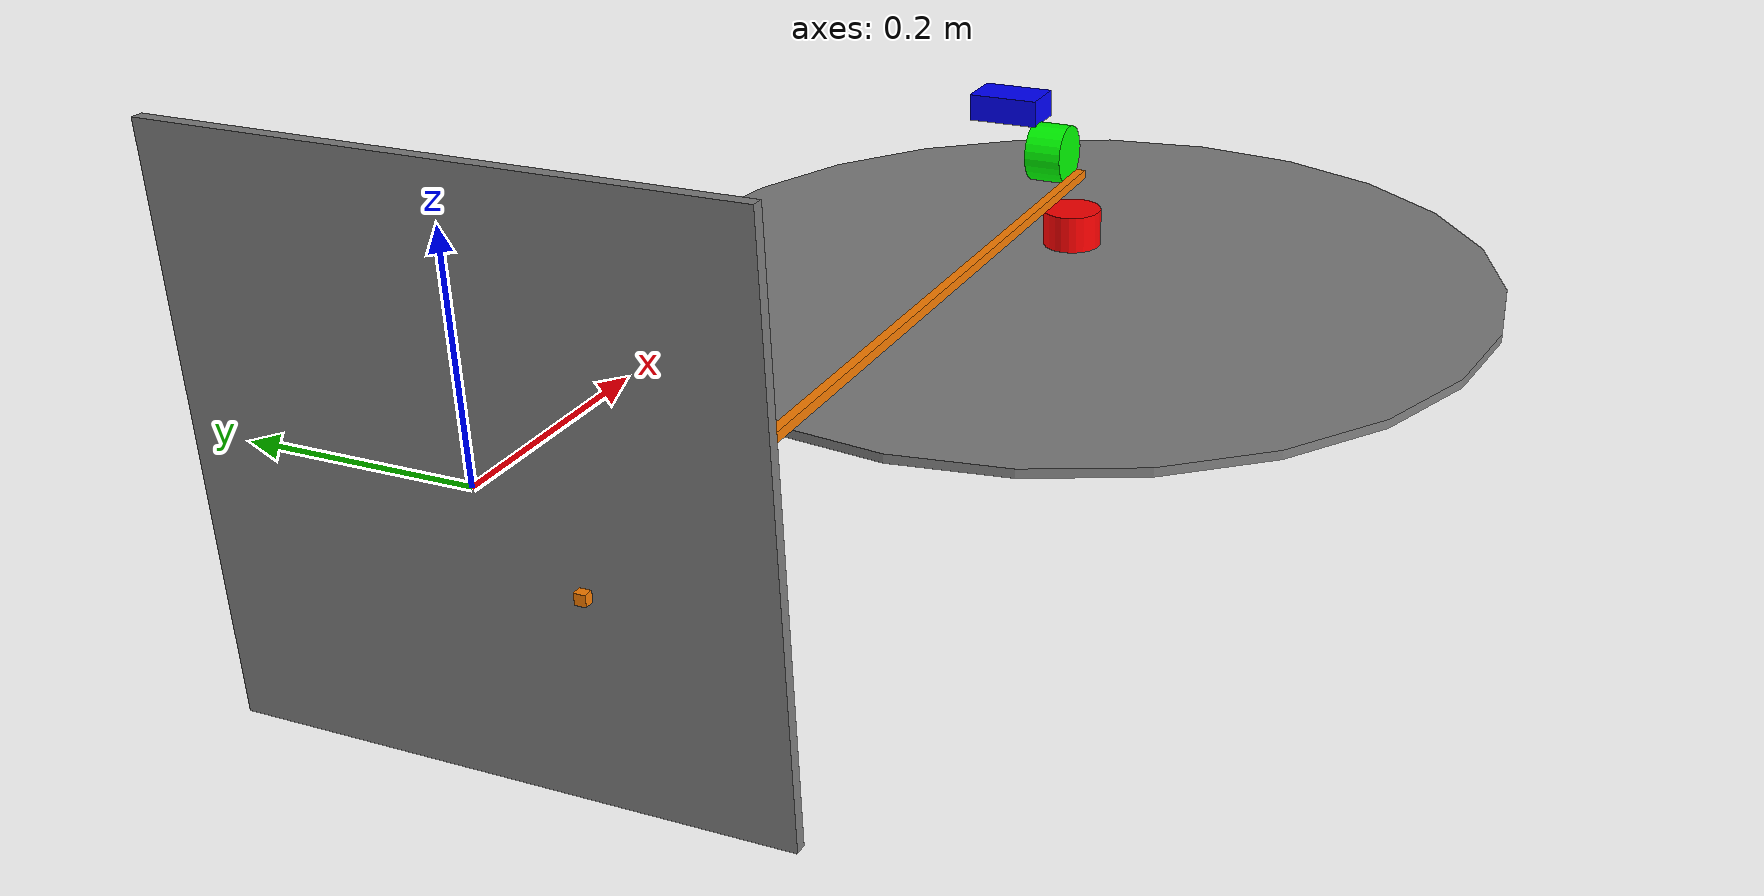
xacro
<?xml version="1.0"?>
<robot xmlns:xacro="http://www.ros.org/wiki/xacro" name="gimbal">

  <!-- ====== 偏移关系参数 - 请根据实际标定结果修改 ====== -->

  <!-- screen_frame到camera_link的静态变换 (从标定得到) -->
  <xacro:property name="screen_to_camera_x" value="1.0"/>
  <xacro:property name="screen_to_camera_y" value="0.0"/>
  <xacro:property name="screen_to_camera_z" value="0.0"/>
  <xacro:property name="screen_to_camera_roll" value="0.0"/>
  <xacro:property name="screen_to_camera_pitch" value="0.0"/>
  <xacro:property name="screen_to_camera_yaw" value="3.1415"/>

  <!-- camera_link到gimbal_base_link的静态变换 (相机→云台底座外参) -->
  <xacro:property name="camera_to_gimbal_base_x" value="0.012564"/>
  <xacro:property name="camera_to_gimbal_base_y" value="0.080182"/>
  <xacro:property name="camera_to_gimbal_base_z" value="-0.2"/>
  <xacro:property name="camera_to_gimbal_base_roll" value="0.0"/>
  <xacro:property name="camera_to_gimbal_base_pitch" value="0.0"/>
  <xacro:property name="camera_to_gimbal_base_yaw" value="0.0"/>

  <!-- pan_joint的安装位置 -->
  <xacro:property name="gimbal_base_to_pan_x" value="0.0"/>
  <xacro:property name="gimbal_base_to_pan_y" value="0.0"/>
  <xacro:property name="gimbal_base_to_pan_z" value="0.04685"/>

  <!-- tilt_joint的安装位置 -->
  <xacro:property name="pan_to_tilt_x" value="0.00058"/>
  <xacro:property name="pan_to_tilt_y" value="-0.024078"/>
  <xacro:property name="pan_to_tilt_z" value="0.085922"/>

  <!-- laser_link的光心小偏移 -->
  <xacro:property name="tilt_to_laser_x" value="0.0"/>
  <xacro:property name="tilt_to_laser_y" value="0.034982"/>
  <xacro:property name="tilt_to_laser_z" value="0.000"/>
  <xacro:property name="tilt_to_laser_roll" value="0.0"/>
  <xacro:property name="tilt_to_laser_pitch" value="0.0"/>
  <xacro:property name="tilt_to_laser_yaw" value="0.0"/>

  <!-- 关节限制 -->
  <xacro:property name="pan_joint_lower_limit" value="-1.57079"/>
  <xacro:property name="pan_joint_upper_limit" value="1.57079"/>
  <xacro:property name="tilt_joint_lower_limit" value="-1.57079"/>
  <xacro:property name="tilt_joint_upper_limit" value="1.57079"/>

  <!-- 几何参数 -->
  <xacro:property name="PI" value="3.14159265359"/>
  <xacro:property name="gimbal_base_height" value="0.01"/>
  <xacro:property name="gimbal_base_radius" value="0.50"/>
  <xacro:property name="pan_height" value="0.04185"/>
  <xacro:property name="pan_radius" value="0.03335"/>
  <xacro:property name="tilt_height" value="0.04185"/>
  <xacro:property name="tilt_radius" value="0.03335"/>

  <!-- ====== 材料定义 ====== -->
  <material name="blue">
    <color rgba="0.0 0.0 1.0 1.0"/>
  </material>

  <material name="red">
    <color rgba="1.0 0.0 0.0 1.0"/>
  </material>

  <material name="green">
    <color rgba="0.0 1.0 0.0 1.0"/>
  </material>

  <material name="grey">
    <color rgba="0.5 0.5 0.5 1.0"/>
  </material>

  <material name="orange">
    <color rgba="1.0 0.5 0.0 1.0"/>
  </material>

  <!-- ====== 链接定义 ====== -->

  <!-- screen_frame - 屏幕坐标系（根链接） -->
  <link name="screen_frame">
    <visual>
      <origin xyz="0 0 0" rpy="0 0 0"/>
      <geometry>
        <box size="0.01 0.5 0.5"/>
      </geometry>
      <material name="grey"/>
    </visual>
  </link>

  <!-- camera_link - 相机链接 -->
  <link name="camera_link">
    <visual>
      <origin xyz="0 0 0" rpy="0 0 0"/>
      <geometry>
        <box size="0.05 0.08 0.03"/>
      </geometry>
      <material name="blue"/>
    </visual>
    <collision>
      <origin xyz="0 0 0" rpy="0 0 0"/>
      <geometry>
        <box size="0.05 0.08 0.03"/>
      </geometry>
    </collision>
    <inertial>
      <origin xyz="0 0 0" rpy="0 0 0"/>
      <mass value="0.1"/>
      <inertia ixx="0.001" ixy="0.0" ixz="0.0" iyy="0.001" iyz="0.0" izz="0.001"/>
    </inertial>
  </link>

  <!-- gimbal_base_link - 云台底座链接 -->
  <link name="gimbal_base_link">
    <visual>
      <origin xyz="0 0 ${gimbal_base_height/2}" rpy="0 0 0"/>
      <geometry>
        <cylinder length="${gimbal_base_height}" radius="${gimbal_base_radius}"/>
      </geometry>
      <material name="grey"/>
    </visual>
    <collision>
      <origin xyz="0 0 ${gimbal_base_height/2}" rpy="0 0 0"/>
      <geometry>
        <cylinder length="${gimbal_base_height}" radius="${gimbal_base_radius}"/>
      </geometry>
    </collision>
    <inertial>
      <origin xyz="0 0 ${gimbal_base_height/2}" rpy="0 0 0"/>
      <mass value="0.5"/>
      <inertia ixx="0.005" ixy="0.0" ixz="0.0" iyy="0.005" iyz="0.0" izz="0.005"/>
    </inertial>
  </link>

  <!-- gimbal_pan_link - 云台水平旋转链接 -->
  <link name="gimbal_pan_link">
    <visual>
      <origin xyz="0 0 ${pan_height/2}" rpy="0 0 0"/>
      <geometry>
        <cylinder length="${pan_height}" radius="${pan_radius}"/>
      </geometry>
      <material name="red"/>
    </visual>
    <collision>
      <origin xyz="0 0 ${pan_height/2}" rpy="0 0 0"/>
      <geometry>
        <cylinder length="${pan_height}" radius="${pan_radius}"/>
      </geometry>
    </collision>
    <inertial>
      <origin xyz="0 0 ${pan_height/2}" rpy="0 0 0"/>
      <mass value="0.3"/>
      <inertia ixx="0.003" ixy="0.0" ixz="0.0" iyy="0.003" iyz="0.0" izz="0.003"/>
    </inertial>
  </link>

  <!-- gimbal_tilt_link - 云台俯仰旋转链接 -->
  <link name="gimbal_tilt_link">
    <visual>
      <origin xyz="0 0 ${tilt_height/2}" rpy="1.57 0 0"/>
      <geometry>
        <cylinder length="${tilt_height}" radius="${tilt_radius}"/>
      </geometry>
      <material name="green"/>
    </visual>
    <collision>
      <origin xyz="0 0 ${tilt_height/2}" rpy="0 0 0"/>
      <geometry>
        <cylinder length="${tilt_height}" radius="${tilt_radius}"/>
      </geometry>
    </collision>
    <inertial>
      <origin xyz="0 0 ${tilt_height/2}" rpy="0 0 0"/>
      <mass value="0.2"/>
      <inertia ixx="0.002" ixy="0.0" ixz="0.0" iyy="0.002" iyz="0.0" izz="0.002"/>
    </inertial>
  </link>

  <!-- laser_link - 激光器链接 -->
  <link name="laser_link">
    <visual>
      <origin xyz="0.5 0 0" rpy="0 1.57 0"/>
      <geometry>
        <box size="0.01 0.01 1.0"/>
      </geometry>
      <material name="orange"/>
    </visual>
    <collision>
      <origin xyz="0 0 0" rpy="0 0 0"/>
      <geometry>
        <box size="0.02 0.02 0.03"/>
      </geometry>
    </collision>
    <inertial>
      <origin xyz="0 0 0" rpy="0 0 0"/>
      <mass value="0.05"/>
      <inertia ixx="0.0001" ixy="0.0" ixz="0.0" iyy="0.0001" iyz="0.0" izz="0.0001"/>
    </inertial>
  </link>

  <!-- ====== 关节定义 ====== -->

  <!-- screen_frame到camera_link的静态连接 -->
  <joint name="screen_to_camera_joint" type="fixed">
    <parent link="screen_frame"/>
    <child link="camera_link"/>
    <origin xyz="${screen_to_camera_x} ${screen_to_camera_y} ${screen_to_camera_z}"
            rpy="${screen_to_camera_roll} ${screen_to_camera_pitch} ${screen_to_camera_yaw}"/>
  </joint>

  <!-- camera_link到gimbal_base_link的静态连接 -->
  <joint name="camera_to_gimbal_base_joint" type="fixed">
    <parent link="camera_link"/>
    <child link="gimbal_base_link"/>
    <origin xyz="${camera_to_gimbal_base_x} ${camera_to_gimbal_base_y} ${camera_to_gimbal_base_z}"
            rpy="${camera_to_gimbal_base_roll} ${camera_to_gimbal_base_pitch} ${camera_to_gimbal_base_yaw}"/>
  </joint>

  <!-- gimbal_yaw_joint - 水平旋转关节 (动态，θ_pan) -->
  <joint name="gimbal_yaw_joint" type="revolute">
    <parent link="gimbal_base_link"/>
    <child link="gimbal_pan_link"/>
    <origin xyz="${gimbal_base_to_pan_x} ${gimbal_base_to_pan_y} ${gimbal_base_to_pan_z}" rpy="0 0 0"/>
    <axis xyz="0 0 1"/>
    <limit lower="${pan_joint_lower_limit}" upper="${pan_joint_upper_limit}" effort="10.0" velocity="2.0"/>
    <dynamics damping="0.1" friction="0.1"/>
  </joint>

  <!-- gimbal_pitch_joint - 俯仰旋转关节 (动态，θ_tilt) -->
  <joint name="gimbal_pitch_joint" type="revolute">
    <parent link="gimbal_pan_link"/>
    <child link="gimbal_tilt_link"/>
    <origin xyz="${pan_to_tilt_x} ${pan_to_tilt_y} ${pan_to_tilt_z}" rpy="0 0 0"/>
    <axis xyz="0 1 0"/>
    <limit lower="${tilt_joint_lower_limit}" upper="${tilt_joint_upper_limit}" effort="10.0" velocity="2.0"/>
    <dynamics damping="0.1" friction="0.1"/>
  </joint>

  <!-- laser_link的静态连接 -->
  <joint name="tilt_to_laser_joint" type="fixed">
    <parent link="gimbal_tilt_link"/>
    <child link="laser_link"/>
    <origin xyz="${tilt_to_laser_x} ${tilt_to_laser_y} ${tilt_to_laser_z}"
            rpy="${tilt_to_laser_roll} ${tilt_to_laser_pitch} ${tilt_to_laser_yaw}"/>
  </joint>

</robot>
